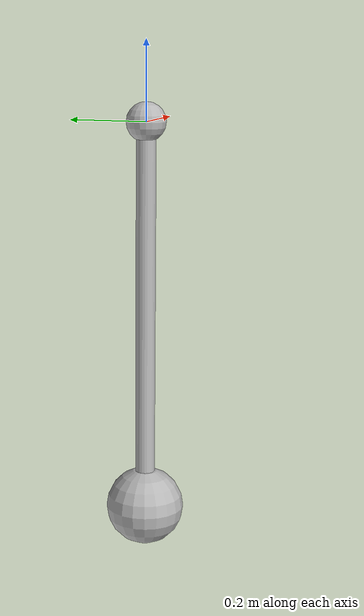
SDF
<?xml version="1.0" ?>
<sdf version='1.5'>
  <model name='pendulum'>
    <link name='base_link'>
      <visual name='base_link_visual'>
        <pose>0 0 0 0 0 0</pose>
        <geometry>
          <sphere>
            <radius>0.05</radius>
          </sphere>
        </geometry>
      </visual>
    </link>
    <link name='arm_link'>
      <pose>0 0 0 0 0 0</pose>
      <visual name='arm_link_visual'>
        <pose>0 0 -0.5 0 0 0</pose>
        <geometry>
          <cylinder>
            <radius>0.025</radius>
            <length>1.0</length>
          </cylinder>
        </geometry>
      </visual>
    </link>
    <joint name='pivot_joint' type='revolute'>
      <child>arm_link</child>
      <parent>base_link</parent>
      <axis>
        <xyz>1 0 0</xyz>
        <limit>
          <lower>-6.28319</lower>
          <upper>6.28319</upper>
        </limit>
        <use_parent_model_frame>1</use_parent_model_frame>
      </axis>
    </joint>
    <link name='bob_link'>
      <pose>0 0 -1.0 0 0 0</pose>
      <inertial>
        <pose>0 0 0 0 0 0</pose>
        <mass>0.1</mass>
        <inertia>
          <ixx>0.0004</ixx>
          <ixy>0</ixy>
          <ixz>0</ixz>
          <iyy>0.0004</iyy>
          <iyz>0</iyz>
          <izz>0.0004</izz>
        </inertia>
      </inertial>
      <visual name='bob_link_visual'>
        <pose>0 0 0 0 0 0</pose>
        <geometry>
          <sphere>
            <radius>0.1</radius>
          </sphere>
        </geometry>
      </visual>
    </link>
    <joint name='arm_bob_weld' type='revolute'>
      <child>bob_link</child>
      <parent>arm_link</parent>
      <axis>
        <xyz>0 1 0</xyz>
        <limit>
          <lower>0</lower>
          <upper>0</upper>
        </limit>
        <use_parent_model_frame>1</use_parent_model_frame>
      </axis>
    </joint>
    <joint name='world_base_weld' type='revolute'>
      <child>base_link</child>
      <parent>world</parent>
      <axis>
        <xyz>0 0 1</xyz>
        <limit>
          <lower>0</lower>
          <upper>0</upper>
        </limit>
      </axis>
    </joint>
  </model>
</sdf>
